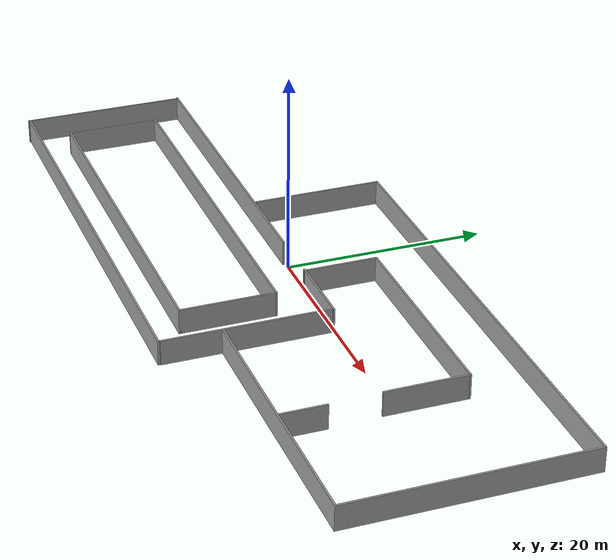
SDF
<sdf version='1.4'>
  <model name='MediumLoopClosure'>
    <link name='Wall_0'>
      <collision name='Wall_0_Collision'>
        <geometry>
          <box>
            <size>34.706300 0.200000 2.500000</size>
          </box>
        </geometry>
        <pose>0.000000 0.000000 1.250000 0.000000 0.000000 0.000000</pose>
      </collision>
      <visual name='Wall_0_Visual'>
        <pose>0.000000 0.000000 1.250000 0.000000 0.000000 0.000000</pose>
        <geometry>
          <box>
            <size>34.706300 0.200000 2.500000</size>
          </box>
        </geometry>
        <material>
          <script>
            <uri>file://media/materials/scripts/gazebo.material</uri>
            <name>Gazebo/Grey</name>
          </script>
        </material>
      </visual>
      <velocity_decay>
        <linear>0.000000</linear>
        <angular>0.000000</angular>
      </velocity_decay>
      <pose>-18.022600 -0.256992 0.000000 0.000000 0.000000 3.141590</pose>
    </link>
    <link name='Wall_10'>
      <collision name='Wall_10_Collision'>
        <geometry>
          <box>
            <size>47.663000 0.200000 2.500000</size>
          </box>
        </geometry>
        <pose>0.000000 0.000000 1.250000 0.000000 0.000000 0.000000</pose>
      </collision>
      <visual name='Wall_10_Visual'>
        <pose>0.000000 0.000000 1.250000 0.000000 0.000000 0.000000</pose>
        <geometry>
          <box>
            <size>47.663000 0.200000 2.500000</size>
          </box>
        </geometry>
        <material>
          <script>
            <uri>file://media/materials/scripts/gazebo.material</uri>
            <name>Gazebo/Grey</name>
          </script>
        </material>
      </visual>
      <velocity_decay>
        <linear>0.000000</linear>
        <angular>0.000000</angular>
      </velocity_decay>
      <pose>-11.306700 -16.862400 0.000000 0.000000 0.000000 0.000000</pose>
    </link>
    <link name='Wall_12'>
      <collision name='Wall_12_Collision'>
        <geometry>
          <box>
            <size>38.981600 0.200000 2.500000</size>
          </box>
        </geometry>
        <pose>0.000000 0.000000 1.250000 0.000000 0.000000 0.000000</pose>
      </collision>
      <visual name='Wall_12_Visual'>
        <pose>0.000000 0.000000 1.250000 0.000000 0.000000 0.000000</pose>
        <geometry>
          <box>
            <size>38.981600 0.200000 2.500000</size>
          </box>
        </geometry>
        <material>
          <script>
            <uri>file://media/materials/scripts/gazebo.material</uri>
            <name>Gazebo/Grey</name>
          </script>
        </material>
      </visual>
      <velocity_decay>
        <linear>0.000000</linear>
        <angular>0.000000</angular>
      </velocity_decay>
      <pose>-11.402300 -4.124480 0.000000 0.000000 0.000000 0.000000</pose>
    </link>
    <link name='Wall_13'>
      <collision name='Wall_13_Collision'>
        <geometry>
          <box>
            <size>9.592970 0.200000 2.500000</size>
          </box>
        </geometry>
        <pose>0.000000 0.000000 1.250000 0.000000 0.000000 0.000000</pose>
      </collision>
      <visual name='Wall_13_Visual'>
        <pose>0.000000 0.000000 1.250000 0.000000 0.000000 0.000000</pose>
        <geometry>
          <box>
            <size>9.592970 0.200000 2.500000</size>
          </box>
        </geometry>
        <material>
          <script>
            <uri>file://media/materials/scripts/gazebo.material</uri>
            <name>Gazebo/Grey</name>
          </script>
        </material>
      </visual>
      <velocity_decay>
        <linear>0.000000</linear>
        <angular>0.000000</angular>
      </velocity_decay>
      <pose>7.988480 -8.820960 0.000000 0.000000 0.000000 -1.570800</pose>
    </link>
    <link name='Wall_14'>
      <collision name='Wall_14_Collision'>
        <geometry>
          <box>
            <size>39.052700 0.200000 2.500000</size>
          </box>
        </geometry>
        <pose>0.000000 0.000000 1.250000 0.000000 0.000000 0.000000</pose>
      </collision>
      <visual name='Wall_14_Visual'>
        <pose>0.000000 0.000000 1.250000 0.000000 0.000000 0.000000</pose>
        <geometry>
          <box>
            <size>39.052700 0.200000 2.500000</size>
          </box>
        </geometry>
        <material>
          <script>
            <uri>file://media/materials/scripts/gazebo.material</uri>
            <name>Gazebo/Grey</name>
          </script>
        </material>
      </visual>
      <velocity_decay>
        <linear>0.000000</linear>
        <angular>0.000000</angular>
      </velocity_decay>
      <pose>-11.437900 -13.517400 0.000000 0.000000 0.000000 3.141590</pose>
    </link>
    <link name='Wall_15'>
      <collision name='Wall_15_Collision'>
        <geometry>
          <box>
            <size>9.521810 0.200000 2.500000</size>
          </box>
        </geometry>
        <pose>0.000000 0.000000 1.250000 0.000000 0.000000 0.000000</pose>
      </collision>
      <visual name='Wall_15_Visual'>
        <pose>0.000000 0.000000 1.250000 0.000000 0.000000 0.000000</pose>
        <geometry>
          <box>
            <size>9.521810 0.200000 2.500000</size>
          </box>
        </geometry>
        <material>
          <script>
            <uri>file://media/materials/scripts/gazebo.material</uri>
            <name>Gazebo/Grey</name>
          </script>
        </material>
      </visual>
      <velocity_decay>
        <linear>0.000000</linear>
        <angular>0.000000</angular>
      </velocity_decay>
      <pose>-30.864300 -8.856540 0.000000 0.000000 0.000000 1.570800</pose>
    </link>
    <link name='Wall_17'>
      <collision name='Wall_17_Collision'>
        <geometry>
          <box>
            <size>13.144000 0.200000 2.500000</size>
          </box>
        </geometry>
        <pose>0.000000 0.000000 1.250000 0.000000 0.000000 0.000000</pose>
      </collision>
      <visual name='Wall_17_Visual'>
        <pose>0.000000 0.000000 1.250000 0.000000 0.000000 0.000000</pose>
        <geometry>
          <box>
            <size>13.144000 0.200000 2.500000</size>
          </box>
        </geometry>
        <material>
          <script>
            <uri>file://media/materials/scripts/gazebo.material</uri>
            <name>Gazebo/Grey</name>
          </script>
        </material>
      </visual>
      <velocity_decay>
        <linear>0.000000</linear>
        <angular>0.000000</angular>
      </velocity_decay>
      <pose>-9.380990 6.482190 0.000000 0.000000 0.000000 1.570800</pose>
    </link>
    <link name='Wall_18'>
      <collision name='Wall_18_Collision'>
        <geometry>
          <box>
            <size>50.046400 0.200000 2.500000</size>
          </box>
        </geometry>
        <pose>0.000000 0.000000 1.250000 0.000000 0.000000 0.000000</pose>
      </collision>
      <visual name='Wall_18_Visual'>
        <pose>0.000000 0.000000 1.250000 0.000000 0.000000 0.000000</pose>
        <geometry>
          <box>
            <size>50.046400 0.200000 2.500000</size>
          </box>
        </geometry>
        <material>
          <script>
            <uri>file://media/materials/scripts/gazebo.material</uri>
            <name>Gazebo/Grey</name>
          </script>
        </material>
      </visual>
      <velocity_decay>
        <linear>0.000000</linear>
        <angular>0.000000</angular>
      </velocity_decay>
      <pose>15.542200 12.954200 0.000000 0.000000 0.000000 0.000000</pose>
    </link>
    <link name='Wall_19'>
      <collision name='Wall_19_Collision'>
        <geometry>
          <box>
            <size>23.960900 0.200000 2.500000</size>
          </box>
        </geometry>
        <pose>0.000000 0.000000 1.250000 0.000000 0.000000 0.000000</pose>
      </collision>
      <visual name='Wall_19_Visual'>
        <pose>0.000000 0.000000 1.250000 0.000000 0.000000 0.000000</pose>
        <geometry>
          <box>
            <size>23.960900 0.200000 2.500000</size>
          </box>
        </geometry>
        <material>
          <script>
            <uri>file://media/materials/scripts/gazebo.material</uri>
            <name>Gazebo/Grey</name>
          </script>
        </material>
      </visual>
      <velocity_decay>
        <linear>0.000000</linear>
        <angular>0.000000</angular>
      </velocity_decay>
      <pose>40.465500 1.073750 0.000000 0.000000 0.000000 -1.570800</pose>
    </link>
    <link name='Wall_20'>
      <collision name='Wall_20_Collision'>
        <geometry>
          <box>
            <size>27.982900 0.200000 2.500000</size>
          </box>
        </geometry>
        <pose>0.000000 0.000000 1.250000 0.000000 0.000000 0.000000</pose>
      </collision>
      <visual name='Wall_20_Visual'>
        <pose>0.000000 0.000000 1.250000 0.000000 0.000000 0.000000</pose>
        <geometry>
          <box>
            <size>27.982900 0.200000 2.500000</size>
          </box>
        </geometry>
        <material>
          <script>
            <uri>file://media/materials/scripts/gazebo.material</uri>
            <name>Gazebo/Grey</name>
          </script>
        </material>
      </visual>
      <velocity_decay>
        <linear>0.000000</linear>
        <angular>0.000000</angular>
      </velocity_decay>
      <pose>26.574000 -10.806700 0.000000 0.000000 0.000000 3.141590</pose>
    </link>
    <link name='Wall_24'>
      <collision name='Wall_24_Collision'>
        <geometry>
          <box>
            <size>7.810900 0.200000 2.500000</size>
          </box>
        </geometry>
        <pose>0.000000 0.000000 1.250000 0.000000 0.000000 0.000000</pose>
      </collision>
      <visual name='Wall_24_Visual'>
        <pose>0.000000 0.000000 1.250000 0.000000 0.000000 0.000000</pose>
        <geometry>
          <box>
            <size>7.810900 0.200000 2.500000</size>
          </box>
        </geometry>
        <material>
          <script>
            <uri>file://media/materials/scripts/gazebo.material</uri>
            <name>Gazebo/Grey</name>
          </script>
        </material>
      </visual>
      <velocity_decay>
        <linear>0.000000</linear>
        <angular>0.000000</angular>
      </velocity_decay>
      <pose>8.715820 -0.175391 0.000000 0.000000 0.000000 0.000000</pose>
    </link>
    <link name='Wall_26'>
      <collision name='Wall_26_Collision'>
        <geometry>
          <box>
            <size>7.433640 0.200000 2.500000</size>
          </box>
        </geometry>
        <pose>0.000000 0.000000 1.250000 0.000000 0.000000 0.000000</pose>
      </collision>
      <visual name='Wall_26_Visual'>
        <pose>0.000000 0.000000 1.250000 0.000000 0.000000 0.000000</pose>
        <geometry>
          <box>
            <size>7.433640 0.200000 2.500000</size>
          </box>
        </geometry>
        <material>
          <script>
            <uri>file://media/materials/scripts/gazebo.material</uri>
            <name>Gazebo/Grey</name>
          </script>
        </material>
      </visual>
      <velocity_decay>
        <linear>0.000000</linear>
        <angular>0.000000</angular>
      </velocity_decay>
      <pose>5.078010 3.410720 0.000000 0.000000 0.000000 1.570800</pose>
    </link>
    <link name='Wall_27'>
      <collision name='Wall_27_Collision'>
        <geometry>
          <box>
            <size>21.900900 0.200000 2.500000</size>
          </box>
        </geometry>
        <pose>0.000000 0.000000 1.250000 0.000000 0.000000 0.000000</pose>
      </collision>
      <visual name='Wall_27_Visual'>
        <pose>0.000000 0.000000 1.250000 0.000000 0.000000 0.000000</pose>
        <geometry>
          <box>
            <size>21.900900 0.200000 2.500000</size>
          </box>
        </geometry>
        <material>
          <script>
            <uri>file://media/materials/scripts/gazebo.material</uri>
            <name>Gazebo/Grey</name>
          </script>
        </material>
      </visual>
      <velocity_decay>
        <linear>0.000000</linear>
        <angular>0.000000</angular>
      </velocity_decay>
      <pose>15.928500 7.027540 0.000000 0.000000 0.000000 0.000000</pose>
    </link>
    <link name='Wall_28'>
      <collision name='Wall_28_Collision'>
        <geometry>
          <box>
            <size>8.290250 0.200000 2.500000</size>
          </box>
        </geometry>
        <pose>0.000000 0.000000 1.250000 0.000000 0.000000 0.000000</pose>
      </collision>
      <visual name='Wall_28_Visual'>
        <pose>0.000000 0.000000 1.250000 0.000000 0.000000 0.000000</pose>
        <geometry>
          <box>
            <size>8.290250 0.200000 2.500000</size>
          </box>
        </geometry>
        <material>
          <script>
            <uri>file://media/materials/scripts/gazebo.material</uri>
            <name>Gazebo/Grey</name>
          </script>
        </material>
      </visual>
      <velocity_decay>
        <linear>0.000000</linear>
        <angular>0.000000</angular>
      </velocity_decay>
      <pose>26.778900 2.982410 0.000000 0.000000 0.000000 -1.570800</pose>
    </link>
    <link name='Wall_3'>
      <collision name='Wall_3_Collision'>
        <geometry>
          <box>
            <size>16.439700 0.200000 2.500000</size>
          </box>
        </geometry>
        <pose>0.000000 0.000000 1.250000 0.000000 0.000000 0.000000</pose>
      </collision>
      <visual name='Wall_3_Visual'>
        <pose>0.000000 0.000000 1.250000 0.000000 0.000000 0.000000</pose>
        <geometry>
          <box>
            <size>16.439700 0.200000 2.500000</size>
          </box>
        </geometry>
        <material>
          <script>
            <uri>file://media/materials/scripts/gazebo.material</uri>
            <name>Gazebo/Grey</name>
          </script>
        </material>
      </visual>
      <velocity_decay>
        <linear>0.000000</linear>
        <angular>0.000000</angular>
      </velocity_decay>
      <pose>12.485200 -8.513540 0.000000 0.000000 0.000000 -1.570800</pose>
    </link>
    <link name='Wall_30'>
      <collision name='Wall_30_Collision'>
        <geometry>
          <box>
            <size>4.673430 0.200000 2.500000</size>
          </box>
        </geometry>
        <pose>0.000000 0.000000 1.250000 0.000000 0.000000 0.000000</pose>
      </collision>
      <visual name='Wall_30_Visual'>
        <pose>0.000000 0.000000 1.250000 0.000000 0.000000 0.000000</pose>
        <geometry>
          <box>
            <size>4.673430 0.200000 2.500000</size>
          </box>
        </geometry>
        <material>
          <script>
            <uri>file://media/materials/scripts/gazebo.material</uri>
            <name>Gazebo/Grey</name>
          </script>
        </material>
      </visual>
      <velocity_decay>
        <linear>0.000000</linear>
        <angular>0.000000</angular>
      </velocity_decay>
      <pose>26.969300 -8.534300 0.000000 0.000000 0.000000 -1.570800</pose>
    </link>
    <link name='Wall_5'>
      <collision name='Wall_5_Collision'>
        <geometry>
          <box>
            <size>16.868100 0.200000 2.500000</size>
          </box>
        </geometry>
        <pose>0.000000 0.000000 1.250000 0.000000 0.000000 0.000000</pose>
      </collision>
      <visual name='Wall_5_Visual'>
        <pose>0.000000 0.000000 1.250000 0.000000 0.000000 0.000000</pose>
        <geometry>
          <box>
            <size>16.868100 0.200000 2.500000</size>
          </box>
        </geometry>
        <material>
          <script>
            <uri>file://media/materials/scripts/gazebo.material</uri>
            <name>Gazebo/Grey</name>
          </script>
        </material>
      </visual>
      <velocity_decay>
        <linear>0.000000</linear>
        <angular>0.000000</angular>
      </velocity_decay>
      <pose>-35.126400 -8.622790 0.000000 0.000000 0.000000 -1.570800</pose>
    </link>
    <static>1</static>
  </model>
</sdf>
